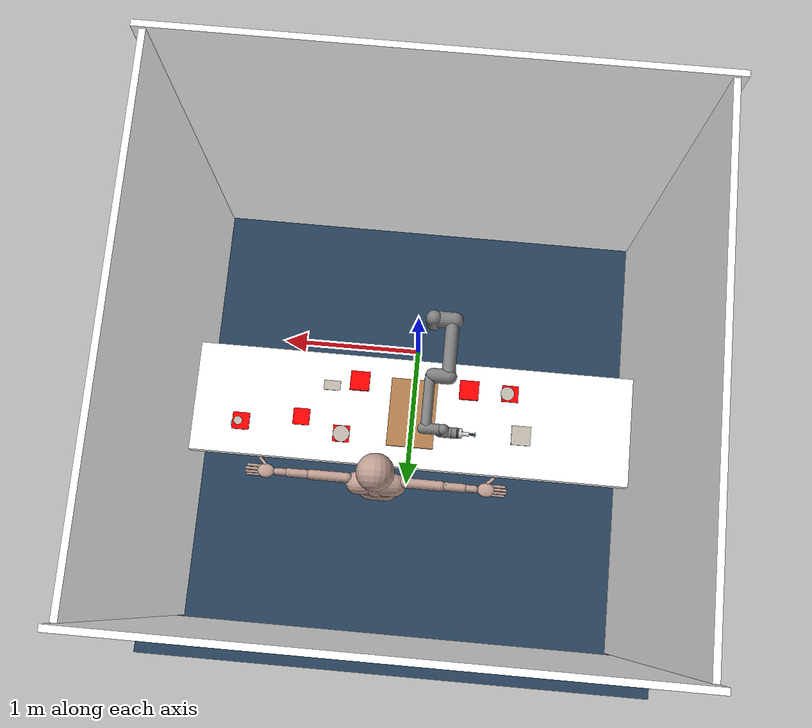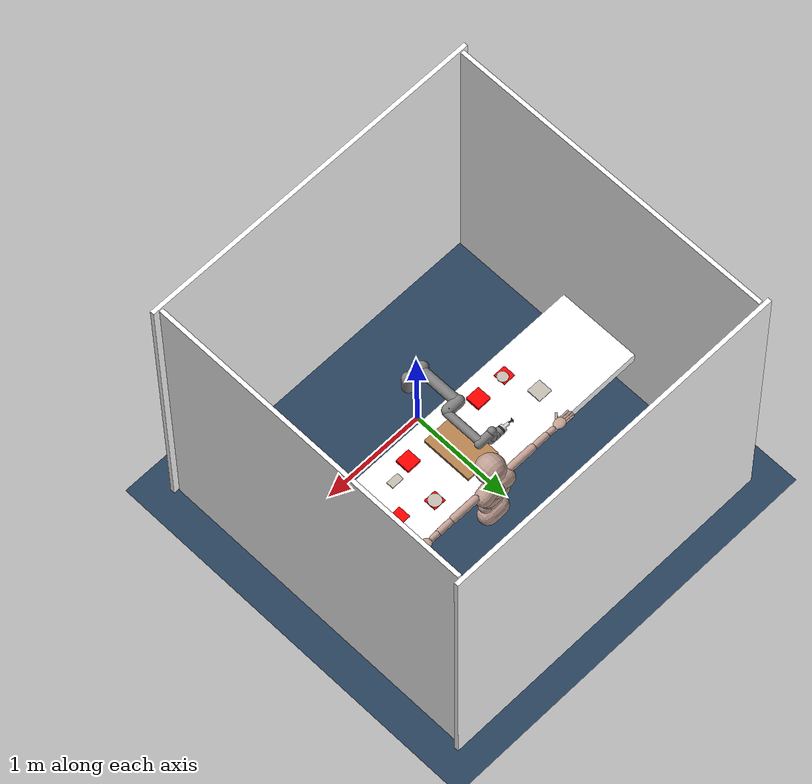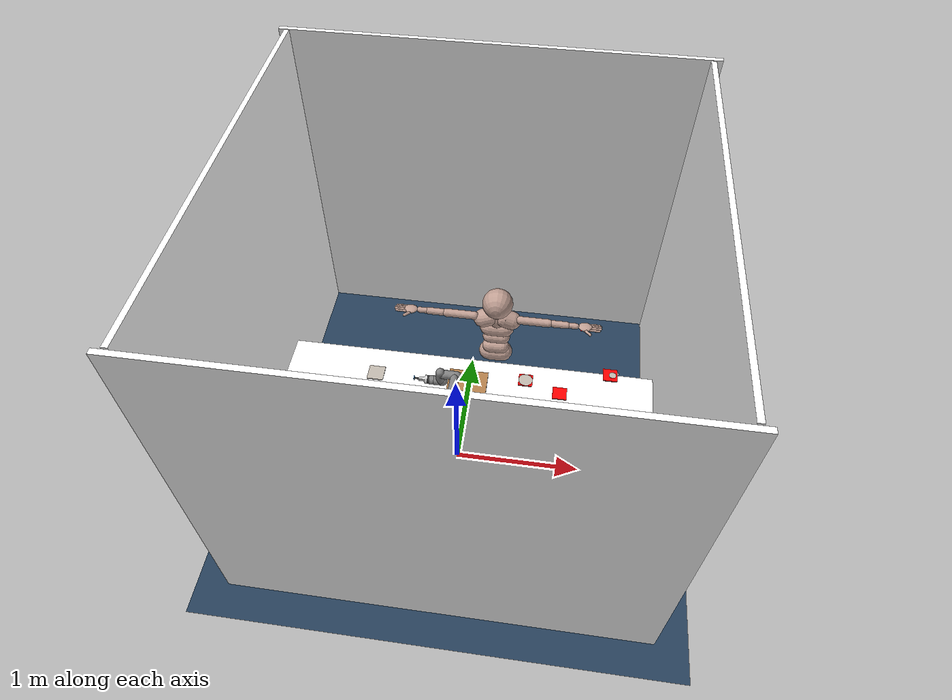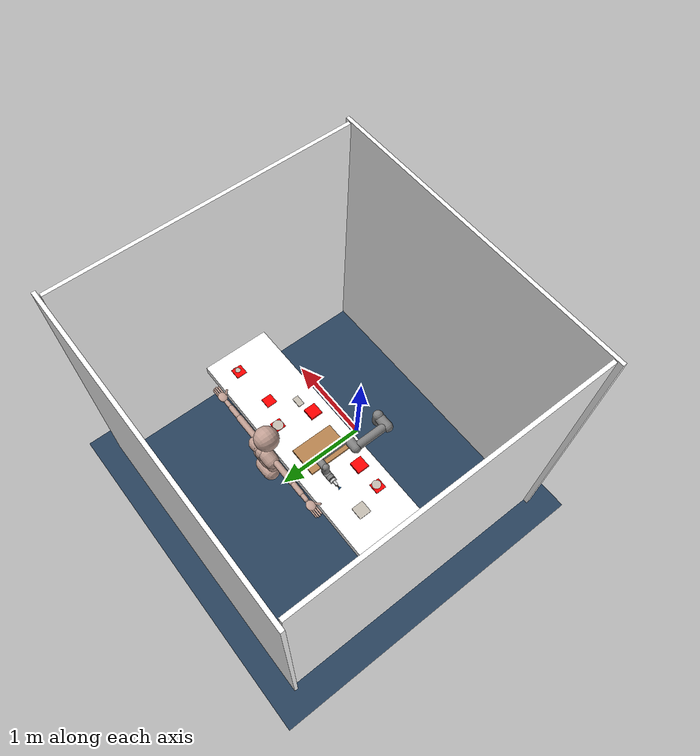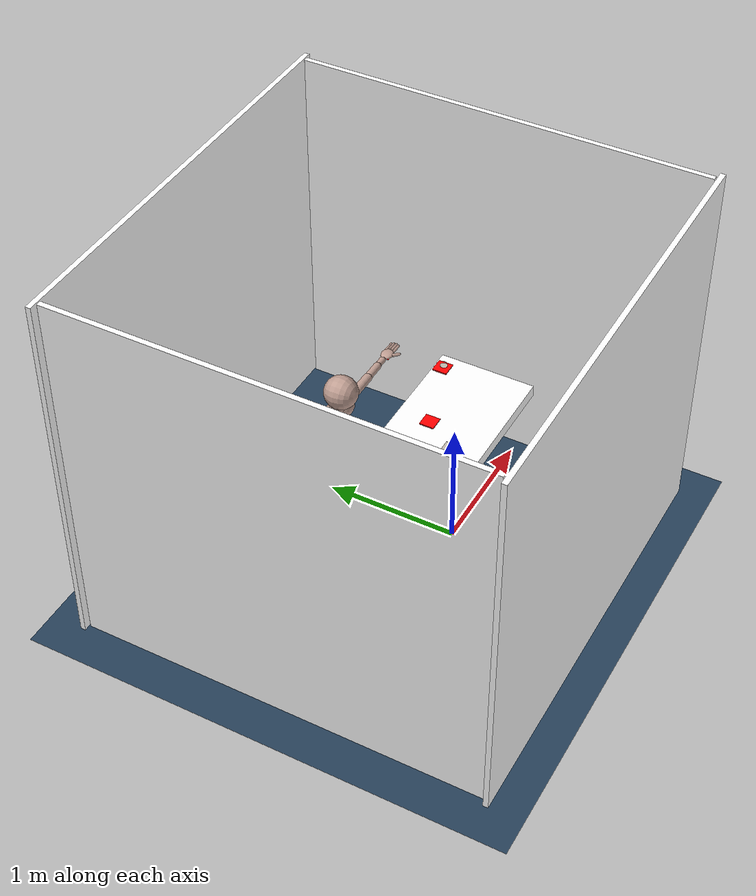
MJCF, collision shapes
<mujoco model="ur5e table">
  <compiler angle="radian" autolimits="true"/>
  <include file="assets/ur5e/ur5e_assets.xml"/>
  <include file="assets/ur5e/ur5e_1_assets.xml"/>
  <include file="assets/ur5e/suction_assets.xml"/>
  <include file="assets/humanoid_assets.xml"/>
  <include file="assets/scene_assets.xml"/>
  <include file="assets/object_assets.xml"/>

  <visual>
    <headlight diffuse="0.6 0.6 0.6"  ambient="0.1 0.1 0.1" specular="0 0 0"/>
    <rgba haze="0.15 0.25 0.35 1"/>
    <global azimuth="120" elevation="-20"/>
  </visual>

  <worldbody>
    <light pos="0 0 1.5" dir="0 0 -1" directional="true"/>
    <geom name="floor" pos="0 0 -0.5" size="0 0 0.05" type="plane" material="groundplane"/>
    <!-- adding a table box -->
    <body name="table" pos="0 0.5 0">
      <geom name="table_collision" pos="0 0 0.1" size="1.6 0.4 0.05" type="box" group="0" friction="1 0.5 0.0001" rgba="1 1 1 1"/>
      <body name="table_top" pos="0 0 0.1">
        <geom name="table_top" size="1.6 0.4 0.05" type="box" conaffinity="0" contype="0" group="1" rgba="1 1 1 1"/>

      </body>

      <geom name="table_left" pos="-1.63 0 1" size="0.02 1.6 1.5" rgba="1 1 1 0" type="box"/>
      <geom name="table_right" pos="1.63 0 1" size="0.02 1.6 1.5" rgba="1 1 1 0" type="box"/>
      <geom name="table_front" pos="0 1.63 1" size="1.7 0.02 1.5" rgba="1 1 1 0" type="box"/>
      <geom name="table_back" pos="0 -1.63 1" size="1.7 0.02 1.5" rgba="1 1 1 0" type="box"/>

    </body>

    <body name="humanoid" pos="0.2 1.06 0.17" >
      <include file="assets/humanoid_include.xml" />
    </body>

    <body name="ur5e_suction" pos="-0.1 -0.2 0.1"  >
      <include file="assets/ur5e/ur5e_suction.xml" />
    </body>

    <geom name="panel1" pos="-0.8 0.6 0.2" size="0.05 0.05 0.01" type="box" conaffinity="0" contype="0"  group="1" mass="0.00001" friction="1 0.005 0.0001" rgba="1 1 0 0" />
    <geom name="panel2" pos="-0.8 0.4 0.2" size="0.05 0.05 0.01" type="box" conaffinity="0" contype="0"  group="1" mass="0.00001" friction="1 0.005 0.0001" rgba="1 1 0 0" />

    <geom name="panel3" pos="-0.6 0.6 0.2" size="0.05 0.05 0.01" type="box" conaffinity="0" contype="0"  group="1" mass="0.00001" friction="1 0.005 0.0001" rgba="1 1 0 0" />
    <geom name="panel4" pos="-0.6 0.4 0.2" size="0.05 0.05 0.01" type="box" conaffinity="0" contype="0"  group="1" mass="0.00001" friction="1 0.005 0.0001" rgba="1 1 0 0" />

    <geom name="panel5" pos="-0.4 0.6 0.2" size="0.05 0.05 0.01" type="box" conaffinity="0" contype="0"  group="1" mass="0.00001" friction="1 0.005 0.0001" rgba="1 1 0 0" />
    <geom name="panel6" pos="-0.4 0.4 0.2" size="0.05 0.05 0.01" type="box" conaffinity="0" contype="0"  group="1" mass="0.00001" friction="1 0.005 0.0001" rgba="1 1 0 0" />

    <geom name="panel7" pos="0.4 0.6 0.2" size="0.05 0.05 0.01" type="box" conaffinity="0" contype="0"  group="1" mass="0.00001" friction="1 0.005 0.0001" rgba="1 1 0 0" />
    <geom name="panel8" pos="0.4 0.4 0.2" size="0.05 0.05 0.01" type="box" conaffinity="0" contype="0"  group="1" mass="0.00001" friction="1 0.005 0.0001" rgba="1 1 0 0" />

    <geom name="panel9" pos="0.6 0.6 0.2" size="0.05 0.05 0.01" type="box" conaffinity="0" contype="0"  group="1" mass="0.00001" friction="1 0.005 0.0001" rgba="1 1 0 0" />
    <geom name="panel10" pos="0.6 0.4 0.2" size="0.05 0.05 0.01" type="box" conaffinity="0" contype="0"  group="1" mass="0.00001" friction="1 0.005 0.0001" rgba="1 1 0 0" />

    <geom name="panel11" pos="0.8 0.6 0.2" size="0.05 0.05 0.01" type="box" conaffinity="0" contype="0"  group="1" mass="0.00001" friction="1 0.005 0.0001" rgba="1 1 0 0" />
    <geom name="panel12" pos="0.8 0.4 0.2" size="0.05 0.05 0.01" type="box" conaffinity="0" contype="0"  group="1" mass="0.00001" friction="1 0.005 0.0001" rgba="1 1 0 0" />

    <geom name="panel13" pos="1.0 0.6 0.2" size="0.05 0.05 0.01" type="box" conaffinity="0" contype="0"  group="1" mass="0.00001" friction="1 0.005 0.0001" rgba="1 1 0 0" />
    <geom name="panel14" pos="1.0 0.4 0.2" size="0.05 0.05 0.01" type="box" conaffinity="0" contype="0"  group="1" mass="0.00001" friction="1 0.005 0.0001" rgba="1 1 0 0" />

    <body name="cutting_board" pos="0 0.5 0.16" >
      <geom name="cutting_board" pos="0 0 0" size="0.17 0.25 0.02" type="box" group="0" friction="1 0.005 0.0001" material="wood" />
      <site name="cutting_board" pos="0 0.05 0.06" rgba='1 0 0 1' type='cylinder' size='0.003 0.006' />
    </body>

    <body name="bread_slice1" pos="-0.4 0.3 0.2" >
      <freejoint name="bread_slice1_joint"/>
      <geom mesh="bread_slice_mesh" type="mesh" material="bread-slice" class="object_visual" />
      <geom type="box" group="0" rgba="1 0 0 0" size="0.07 0.07 0.015" density="500" friction="1 1 0.1"/>
      <site pos="0 0 0.05" name="bread_slice1" class="site_top" />
    </body>

    <body name="bread_slice2" pos="0.4 0.3 0.2" >
      <freejoint name="bread_slice2_joint"/>
      <geom mesh="bread_slice_mesh" type="mesh" material="bread-slice" class="object_visual" />
      <geom type="box" group="0" rgba="1 0 0 0" size="0.07 0.07 0.015" density="500" friction="1 1 0.1"/>

      <site pos="0 0 0.05" name="bread_slice2" class="site_top" />
    </body>

    <body name="bacon" pos="0.6 0.35 0.2"  >
      <freejoint name="bacon_joint"/>
      <geom type="box" group="0" size="0.06 0.035 0.005" density="1000" material="bacon" friction="1 1 0.1"/>
      <site pos="0 0 0.05" name="bacon" class="site_top"/>
    </body>

    <body name="beef_patty" pos="0.5 0.7 0.2"  >
      <freejoint name="beef_patty_joint"/>
      <geom type="cylinder" class='object_visual' friction="1 0.1 0.05" solref="0.01 1.5" condim="6" group="0" size="0.06 0.006" density="100" material="patty"/>
      <geom type="box" group="0" size="0.06 0.06 0.005" density="1000" rgba="1 0 0 0" friction="1 1 0.1"/>
      <site pos="0 0 0.05" name="beef_patty" class="site_top"/>
    </body>

  <!-- cheese -->
    <body name="cheese" pos="-0.8 0.6 0.2">
      <freejoint name="cheese_joint"/>
      <geom type="box" group="0" size="0.07 0.07 0.005" density="1000" material="cheese" friction="1 1 0.1"/>
      <site pos="0 0 0.05" name="cheese" class="site_top" />
    </body>

    <body name="tomato" pos="0.8 0.6 0.2">
      <freejoint name="tomato_joint"/>
      <geom type="cylinder" class='object_visual' friction="1 0.1 0.05" solref="0.01 1.5" condim="6" group="0" size="0.06 0.004" density="100" material="tomato"/>
      <geom type="box" group="0" size="0.06 0.06 0.005" density="1000" rgba="1 0 0 0" friction="1 1 0.1"/>
      <site pos="0 0 0.07" name="tomato" class="site_top"/>
    </body>

    <body name="cucumber" pos="1.2 0.7 0.4">
      <freejoint name="cucumber_joint"/>
      <geom pos="0 0 0" size="0.03 0.002" type="cylinder" class='object_visual' friction="1 0.1 0.05" solref="0.01 1.5" condim="6" group="0" density="100" material="cucumber"/>
      <geom pos="0.02 0 0.005" size="0.03 0.002"  type="cylinder" class='object_visual' friction="1 0.1 0.05" solref="0.01 1.5" condim="6" group="0" density="100" material="cucumber"/>
      <geom pos="0.04 0.02 0" size="0.03 0.002"  type="cylinder" class='object_visual' friction="1 0.1 0.05" solref="0.01 1.5" condim="6" group="0" density="100" material="cucumber"/>

      <geom type="box" group="0" size="0.06 0.06 0.005" density="1000" rgba="1 0 0 0" friction="1 1 0.1"/>
      <site pos="0 0 0.07" name="cucumber" class="site_top"/>
    </body>

    <body name="ham" pos="-0.7 0.3 0.2">
      <freejoint name="ham_joint"/>
      <geom pos="0 0 0" size="0.05 0.002" type="cylinder" class='object_visual' friction="1 0.1 0.05" solref="0.01 1.5" condim="6" group="0" density="100" material="ham"/>
      <geom pos="0.02 0 0.005" size="0.05 0.002"  type="cylinder" class='object_visual' friction="1 0.1 0.05" solref="0.01 1.5" condim="6" group="0" density="100" material="ham"/>
      <geom type="box" group="0" size="0.06 0.06 0.005" density="1000" rgba="1 0 0 0" friction="1 1 0.1"/>
      <site pos="0 0 0.07" name="ham" class="site_top"/>
    </body>

    <camera mode="fixed" name="face_panda" pos="0.062 -2.806 0.768" xyaxes="1.000 0.009 -0.000 0.001 -0.131 0.991"/>
    <camera mode="fixed" name="face_ur5e" pos="0.084 3.711 0.772" xyaxes="-1.000 0.016 0.000 0.002 0.111 0.994"/>
    <camera mode="fixed" name="top_cam" pos="-0.001 0.652 2.057" xyaxes="-1.000 -0.000 -0.000 0.000 -1.000 0.019"/>
    <camera mode="fixed" name="right_cam" pos="1.873 0.605 0.926" xyaxes="0.014 1.000 0.000 -0.242 0.003 0.970"/>
    <camera mode="fixed" name="left_cam" pos="-1.873 0.605 0.926" xyaxes="-0.000 -1.000 0.000 0.177 -0.000 0.984"/>
    <camera name="teaser" pos="2.675 -0.747 1.997" xyaxes="0.496 0.869 -0.000 -0.429 0.245 0.869"/>
    <camera name='recipe' pos="1.257 -0.407 1.244" xyaxes="0.579 0.815 0.000 -0.401 0.285 0.871"/>
    <camera name='video' pos="1.957 -0.281 1.731" xyaxes="0.487 0.874 0.000 -0.500 0.278 0.820"/>

  </worldbody>

  <equality>
    <weld name="bacon_suction" body1='bacon' body2='suction_tip_1' relpose='0 0 0 1 0 0 0' active='false'/>
    <weld name="cheese_suction" body1='cheese' body2='suction_tip_1' relpose='0 0 0 1 0 0 0' active='false'/>
    <weld name="tomato_suction" body1='tomato' body2='suction_tip_1' relpose='0 0 0 1 0 0 0' active='false'/>
    <weld name="bread_slice1_suction" body1='bread_slice1' body2='suction_tip_1' relpose='0 0 0 1 0 0 0' active='false'/>
    <weld name="bread_slice2_suction" body1='bread_slice2' body2='suction_tip_1' relpose='0 0 0 1 0 0 0' active='false'/>
    <weld name="cucumber_suction" body1='cucumber' body2='suction_tip_1' relpose='0 0 0 1 0 0 0' active='false'/>
    <weld name="ham_suction" body1='ham' body2='suction_tip_1' relpose='0 0 0 1 0 0 0' active='false'/>
    <weld name="beef_patty_suction" body1='beef_patty' body2='suction_tip_1' relpose='0 0 0 1 0 0 0' active='false'/>

    <weld name='bacon_rpalm' body1='bacon' body2='rpalm' relpose='0.0 0.0 0 0.0 1.0 0.0 0.0' active='false'/>
    <weld name='cheese_rpalm' body1='cheese' body2='rpalm' relpose='0.0 0.0 0 0.0 1.0 0.0 0.0' active='false'/>
    <weld name='tomato_rpalm' body1='tomato' body2='rpalm' relpose='0.0 0.0 0 0.0 1.0 0.0 0.0' active='false'/>
    <weld name='bread_slice1_rpalm' body1='bread_slice1' body2='rpalm' relpose='0.0 0.0 0 0.0 1.0 0.0 0.0' active='false'/>
    <weld name='bread_slice2_rpalm' body1='bread_slice2' body2='rpalm' relpose='0.0 0.0 0 0.0 1.0 0.0 0.0' active='false'/>
    <weld name='cucumber_rpalm' body1='cucumber' body2='rpalm' relpose='0.0 0.0 0 0.0 1.0 0.0 0.0' active='false'/>
    <weld name='ham_rpalm' body1='ham' body2='rpalm' relpose='0.0 0.0 0 0.0 1.0 0.0 0.0' active='false'/>
    <weld name='beef_patty_rpalm' body1='beef_patty' body2='rpalm' relpose='0.0 0.0 0 0.0 1.0 0.0 0.0' active='false'/>

  </equality>

  <keyframe>
    <key
    name="home"
    ctrl="0 -1.5708 -1.5708 1.5708 -1.5708 -1.5708 0 0     0 0 0 0 0 -0.25 0 -0.3 0.7 0 0 0 0 0 0 0"
    qpos='-3.09045e-07 0.00482237 1.64097e-05 -0.00617895 -0.0161173 1.03212 0.383236 -0.548004 -0.116539 -0.00940649 -0.0201149 0.158207 0.0206823 0.0984588 0.0102944 0.00595989 4.80231e-05 -0.252486 0.00187773 -0.304223 0.698156 2.01836e-05 0.000264468 -3.46015e-05 5.389e-05 -1.50264e-06 1.74216e-05 -7.3564e-18 -1.5708 -1.56576 1.57579 -1.57023 -1.5708 2.70197e-13 -0.4 0.3 0.16494 1 9.70873e-17 -1.39463e-16 9.92144e-17 0.4 0.3 0.16494 1 9.70873e-17 -1.39463e-16 9.92144e-17 0.6 0.35 0.15494 1 3.65702e-17 1.52225e-18 -6.05067e-11 0.5 0.7 0.15494 1 3.30488e-17 -2.1818e-18 -1.08463e-16 -0.8 0.6 0.15494 1 2.48471e-17 3.00262e-20 -1.26614e-16 0.8 0.6 0.15494 1 3.58171e-17 -1.464e-18 7.88657e-17 0.942824 0.332426 0.15494 0.999762 -1.23062e-08 3.43962e-08 0.0218363 -1 0.3 0.15494 1 2.69756e-17 1.1553e-08 3.52576e-13' />

    </keyframe>

</mujoco>

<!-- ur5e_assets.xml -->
<mujocoinclude>
  <compiler angle="radian" meshdir="assets" texturedir="assets" autolimits="true"/>
  <default>
    <joint axis="0 1 0" range="-6.28319 6.28319"/>
    <position ctrlrange="-6.2831 6.2831"/>

    <default class="visual">
      <geom type="mesh" contype="0" conaffinity="0" group="2"/>
    </default>

    <default class="collision">
      <geom type="capsule" group="3"/>
      <default class="eef_collision">
        <geom type="cylinder"/>
      </default>
    </default>
    <site size="0.001" rgba="0.5 0.5 0.5 0.3" group="4"/>

    <!-- Reference:
      https://www.universal-robots.com/articles/ur/robot-care-maintenance/max-joint-torques/ -->
    <default class="size3">
      <joint armature="0.1" damping="200"/>
      <position kp="3500" forcerange="-150 150"/>
      <default class="size3_limited">
      <!-- NOTE(Mandi): temp change 3.1415 into 2.1415 -->
        <joint range="-3.1415 2.1415"/>
        <position ctrlrange="-3.1415 2.1415"/>
      </default>
    </default>
    <default class="size1">
      <joint armature="0.1" damping="15"/>
      <position kp="3000" forcerange="-28 28"/>
    </default>

    <default class="active_adhesion">
      <geom margin=".01" gap=".01"/>
    </default>
  </default>

  <asset>
    <material name="black" specular="0.5" shininess="0.25" rgba="0.033 0.033 0.033 1"/>
    <material name="jointgray" specular="0.5" shininess="0.25" rgba="0.278 0.278 0.278 1"/>
    <material name="linkgray" specular="0.5" shininess="0.25" rgba="0.82 0.82 0.82 1"/>
    <material name="urblue" specular="0.5" shininess="0.25" rgba="0.49 0.678 0.8 1"/>

    <mesh file="ur5e/assets/base_0.obj"/>
    <mesh file="ur5e/assets/base_1.obj"/>
    <mesh file="ur5e/assets/shoulder_0.obj"/>
    <mesh file="ur5e/assets/shoulder_1.obj"/>
    <mesh file="ur5e/assets/shoulder_2.obj"/>
    <mesh file="ur5e/assets/upperarm_0.obj"/>
    <mesh file="ur5e/assets/upperarm_1.obj"/>
    <mesh file="ur5e/assets/upperarm_2.obj"/>
    <mesh file="ur5e/assets/upperarm_3.obj"/>
    <mesh file="ur5e/assets/forearm_0.obj"/>
    <mesh file="ur5e/assets/forearm_1.obj"/>
    <mesh file="ur5e/assets/forearm_2.obj"/>
    <mesh file="ur5e/assets/forearm_3.obj"/>
    <mesh file="ur5e/assets/wrist1_0.obj"/>
    <mesh file="ur5e/assets/wrist1_1.obj"/>
    <mesh file="ur5e/assets/wrist1_2.obj"/>
    <mesh file="ur5e/assets/wrist2_0.obj"/>
    <mesh file="ur5e/assets/wrist2_1.obj"/>
    <mesh file="ur5e/assets/wrist2_2.obj"/>
    <mesh file="ur5e/assets/wrist3.obj"/>

     <!-- suction gripper -->
    <mesh file="suction/base.obj" name="suction_base_mesh" scale="0.001 0.001 0.001" />
    <mesh file="suction/mid_suction.obj" name="suction_mid_mesh" scale="0.001 0.001 0.001" />
    <mesh file="suction/head.obj" name="suction_head_mesh" scale="0.0015 0.0015 0.0015" />
    <mesh file="suction/tip.obj" name="suction_tip_mesh" scale="0.0015 0.0015 0.0015" />
    <material name="DarkGrey" rgba="0.2 0.2 0.2 1.0"  />
    <material name="suction_blue" rgba="0.18039216 0.50588235 0.77254902 1"/>

  </asset>

</mujocoinclude>

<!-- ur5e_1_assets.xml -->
<mujocoinclude>
  <compiler angle="radian" meshdir="assets" texturedir="assets" autolimits="true"/>
 <actuator>
    <position name="ur5e_1_base" joint="ur5e_1_base_joint" kp="1000" ctrlrange="-2 1.3"/>
    <position name="ur5e_1_shoulder_pan" joint="ur5e_1_shoulder_pan_joint" class="size3" />
    <position name="ur5e_1_shoulder_lift" joint="ur5e_1_shoulder_lift_joint" class="size3"/>
    <position name="ur5e_1_elbow" joint="ur5e_1_elbow_joint" class="size3_limited"/>
    <position name="ur5e_1_wrist_1" joint="ur5e_1_wrist_1_joint" class="size1"/>
    <position name="ur5e_1_wrist_2" joint="ur5e_1_wrist_2_joint" class="size1"/>
    <position name="ur5e_1_wrist_3" joint="ur5e_1_wrist_3_joint" class="size1" />

  </actuator>

</mujocoinclude>

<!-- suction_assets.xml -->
<mujocoinclude>
  <actuator>
    <adhesion name="adhere_gripper" body="suction_disk" ctrlrange="0 1" gain="100"/>
  </actuator>
</mujocoinclude>

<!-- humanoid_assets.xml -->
<mujocoinclude>
  <compiler angle="radian"  />
  <statistic extent="2" center="0 0 1"/>
  <default class="main">
    <joint limited="true" solimplimit="0 0.99 0.01" stiffness="0.1" armature=".01" damping="1"/>
    <geom friction="0.7" solref="0.015 1" solimp="0.95 0.99 0.003"/>
    <motor ctrllimited="true" ctrlrange="-1 1"/>

    <default class="humanoid">
      <geom type="capsule" material="self"/>
      <default class="stiff_low">
        <joint stiffness="1" damping="80" armature="0.1" />
      </default>
      <default class="stiff_medium">
        <joint stiffness="1" damping="80" armature="0.1" />
      </default>
      <default class="stiff_high">
        <joint stiffness="1" damping="80" armature="0.1" />
      </default>

      <default class="joint_act">
        <position kp="1000"  forcerange="-90 90"/>
      </default>

      <default class="touch">
        <site group="3" rgba="0 0 1 .5"/>
      </default>

      <default class="keypoint">
        <site size="0.01" type="sphere" rgba="1 0 0 0"/>
        <geom rgba='0 0.5 1 1' type='cylinder' size='0.005 0.01' conaffinity="0" contype="0"  group="1" mass="0.00001"/>
      </default>
    </default>

    <default class="hand_adhesion">
      <geom margin=".015" gap=".015"/>
    </default>
  </default>

  <asset>
    <texture name="grid" type="2d" builtin="checker" rgb1=".1 .2 .3" rgb2=".2 .3 .4" width="300" height="300" mark="edge" markrgb=".2 .3 .4"/>
    <material name="grid" texture="grid" texrepeat="1 1" texuniform="true" reflectance=".2"/>
    <material name="self" rgba="0.7490196078431373 0.6196078431372549 0.5725490196078431 1" reflectance=".1"/>
    <material name="self_default" rgba=".7 .5 .3 1"/>
    <material name="self_highlight" rgba="0 .5 .3 1"/>
    <material name="effector" rgba=".7 .4 .2 1"/>
    <material name="effector_default" rgba=".7 .4 .2 1"/>
    <material name="effector_highlight" rgba="0 .5 .3 1"/>
    <material name="decoration" rgba=".3 .5 .7 1"/>
    <material name="eye" rgba="0 .2 1 1"/>
    <material name="target" rgba=".6 .3 .3 1"/>
    <material name="target_default" rgba=".6 .3 .3 1"/>
    <material name="target_highlight" rgba=".6 .3 .3 .4"/>
    <material name="site" rgba=".5 .5 .5 .3"/>
  </asset>

  <contact>
    <exclude body1="lclavicle" body2="rclavicle"/>
    <exclude body1="lowerneck" body2="lclavicle"/>
    <exclude body1="lowerneck" body2="rclavicle"/>
    <exclude body1="upperneck" body2="lclavicle"/>
    <exclude body1="upperneck" body2="rclavicle"/>
  </contact>

  <actuator>
    <position name="human_base" joint="human_base_joint" ctrlrange="-1.5 0.1" kp="1000" />
    <position name="thoraxrx" joint="thoraxrx" ctrlrange="-0.2 0.3" class="joint_act" />
    <position name="thoraxry" joint="thoraxry" ctrlrange="-0.5236 0.5236" class="joint_act" />

  <!-- motor version of the left side controllable joints: -->

  <!-- position version of the left side joints: -->

    <!-- joints from body:  "lhipjoint"-->

    <!-- joints from body:  "rhipjoint"-->

    <!-- position version of the right side joints: -->
    <position name="rclaviclery" joint="rclaviclery" ctrlrange="-0.174533 0.349" class="joint_act"/>
    <position name="rclaviclerz" joint="rclaviclerz" ctrlrange="-0.349 0" class="joint_act"/>
    <position name="rhumerusrx" joint="rhumerusrx" ctrlrange="-1.0472 1.5708" class="joint_act"  />
    <position name="rhumerusry" joint="rhumerusry" ctrlrange="-1.5708 1.5708" class="joint_act" />
    <position name="rhumerusrz" joint="rhumerusrz" ctrlrange="-1.5708 1.5708" class="joint_act" />
    <position name="rradiusrx" joint="rradiusrx" ctrlrange="-0.174533 2.967" class="joint_act" />
    <position name="rwristry" joint="rwristry" ctrlrange="-3.1415 0" class="joint_act" />
    <position name="rhandrx" joint="rhandrx" ctrlrange="-1.5708 1.5708" class="joint_act" />
    <position name="rhandrz" joint="rhandrz" ctrlrange="-0.7853 0.7853" class="joint_act" />
    <position name="rfingersrx" joint="rfingersrx" ctrlrange="0 1.6" class="joint_act"/>
    <position name="rthumbrx" joint="rthumbrx" ctrlrange="0 1.5708" class="joint_act"/>
    <position name="rthumbrz" joint="rthumbrz" ctrlrange="-0.7853 0.7853" class="joint_act"/>

    <adhesion name="adhere_hand" body="rhand" ctrlrange="0 1" gain="600"/>

    <!-- NOTE(Mandi): keeps just one joint, thoraxry, to keep thorax body stable -->

  </actuator>

  <sensor>
    <subtreelinvel name="thorax_subtreelinvel" body="thorax"/>
    <velocimeter name="sensor_root_veloc" site="root"/>
    <gyro name="sensor_root_gyro" site="root"/>
    <accelerometer name="sensor_root_accel" site="root"/>

  </sensor>

</mujocoinclude>

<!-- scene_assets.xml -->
<mujocoinclude>
  <asset>
    <texture type="skybox" builtin="gradient" rgb1="0.3 0.5 0.7" rgb2="0 0 0" width="512" height="3072"/>
    <texture type="2d" name="groundplane" builtin="checker" mark="edge" rgb1="0.2 0.3 0.4" rgb2="0.1 0.2 0.3" markrgb="0.8 0.8 0.8" width="300" height="300"/>
    <material name="groundplane" texture="groundplane" texuniform="true" texrepeat="2 2" reflectance="0.2"/>
  </asset>
</mujocoinclude>

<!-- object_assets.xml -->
<mujocoinclude>
  <default>
    <default class="object_visual">
      <geom type="mesh" conaffinity="0" contype="0"  group="1" mass="0.00001" />
    </default>

    <default class="obj_sites">
      <site type='cylinder' size='0.003 0.006' group="3"/>
      <default class="site_top">
        <geom rgba='1 0 0 0' type='cylinder' size='0.003 0.003' conaffinity="0" contype="0"  group="1" mass="0.00001"/>
        <site rgba='1 0 0 1' zaxis="0 0 1"/>
      </default>
      <default class="site_bottom">
        <geom rgba='0 1 0 0.3' type='cylinder' size='0.003 0.003' conaffinity="0" contype="0"  group="1" mass="0.00001"/>
        <site rgba='0 1 0 0.3' zaxis="0 0 -1" />
      </default>
      <default class="site_front">
        <geom rgba='1 1 0 0.3' type='cylinder' size='0.003 0.003' conaffinity="0" contype="0"  group="1" mass="0.00001"/>
        <site rgba='1 1 0 0.3' zaxis="0 1 0" />
      </default>
      <default class="site_back">
        <geom rgba='0 1 1 0.3' type='cylinder' size='0.003 0.003' conaffinity="0" contype="0"  group="1" mass="0.00001"/>
        <site rgba='0 1 1 0.3' zaxis="0 -1 0"/>
      </default>
      <default class="site_left">
        <geom rgba='1 0 1 0.3' type='cylinder' size='0.003 0.006' zaxis="-1 0 0" conaffinity="0" contype="0"  group="1" mass="0.00001"/>
        <site rgba='1 0 1 0.3' zaxis="-1 0 0"/>
      </default>
      <default class="site_right">
        <geom rgba='0 0 1 0.3' type='cylinder' size='0.003 0.003' conaffinity="0" contype="0"  group="1" mass="0.00001"/>
        <site rgba='0 0 1 0.3' zaxis="1 0 0" />
      </default>

    </default>

    <default class="object_collision">
        <geom density="500" rgba="0.8 0.8 0.8 0.9" group="3"/>
        <!-- friction="1 0.5 0.01" margin="0.0005"  -->
    </default>
    <default class="hingecabinet">
      <joint damping="2" frictionloss="2" armature=".01" limited="true"/>
      <default class="hinge_collision">
          <geom type="box" material="white-wood" />
      </default>
    </default>

  </default>

  <asset>
    <!-- CREDIT: taken from robosuite -->
    <!-- milk -->
    <mesh file="objects/meshes/milk.msh" name="milk_mesh" scale="1.5 1.5 1.5"/>
    <mesh file="objects/meshes/milk_contact0.stl" name="milk_contact0" scale="1.5 1.5 1.5"/>
    <texture file="objects/textures/ceramic.png" name="tex-ceramic" type="2d"/>
    <material name="ceramic" reflectance="0.5" texrepeat="1 1" texture="tex-ceramic" texuniform="true"/>

    <!-- pantry box -->
    <texture file="objects/textures/light-wood.png" type="2d" name="tex-light-wood"/>
    <material name="light-wood" reflectance="0" texrepeat="15 15" texture="tex-light-wood" texuniform="true"/>
    <material name="wood" reflectance="0" texrepeat="4 4" texture="tex-light-wood" texuniform="true" />

    <!-- bread -->
    <texture file="objects/textures/bread.png" type="2d" name="tex-bread" />
    <texture file="objects/textures/bread_slice.png" type="2d" name="tex-bread-slice" gridsize="1 1" />
    <material name="bread" reflectance="0.7" texrepeat="10 10" texture="tex-bread" texuniform="true"/>
    <material name="bread-slice" reflectance="0.01" texrepeat="10 10" texture="tex-bread" texuniform="false"/>
    <mesh file="objects/meshes/bread.stl" name="bread_mesh" scale="1.4 2.4 1.4"/>
    <mesh file="objects/meshes/bread_slice.stl" name="bread_slice_mesh" scale="1 1 1"/>

    <!-- soda can -->
    <mesh file="objects/meshes/can.msh" name="can_mesh" scale="1.4 1.4 1.4"/>
    <texture file="objects/textures/soda.png" name="tex-can" type="2d"/>
    <material name="can" reflectance="0.7" texrepeat="5 5" texture="tex-can" texuniform="true"/>

    <!-- cereal box -->
    <mesh file="objects/meshes/cereal.msh" name="cereal" scale="1.2 1.4 1.2"/>
    <texture type="2d" file="objects/textures/cereal.png" rgb1="1 1 1" name="tex-cereal"/>
    <material name="cereal" reflectance="0.5" texrepeat="1 1" texture="tex-cereal" texuniform="false"/>

    <!-- trash bin -->
    <mesh file="objects/meshes/bin.stl" name="trash_bin" scale="0.6 0.85 0.3"/>

    <!-- cheese -->
    <texture name="tex-cheese" type="2d" file="objects/textures/cheese.png"/>
    <material name="cheese" reflectance="0.001" texrepeat="0.9 0.9" texture="tex-cheese" texuniform="false"/>

    <!-- bacon -->
    <texture name="tex-bacon" type="2d" file="objects/textures/bacon.png"/>
    <material name="bacon" reflectance="0" texrepeat="0.4 0.4" texture="tex-bacon" texuniform="false"/>

    <!-- tomato -->
    <texture name="tex-tomato" type="2d" file="objects/textures/tomato.png"/>
    <material name="tomato"  texrepeat="0.6 0.6" texture="tex-tomato" texuniform="false"/>

    <texture name="tex-cucumber" type="2d" file="objects/textures/cucumber.png"/>
    <material name="cucumber" shininess="0" reflectance="0" specular="0.001"  texrepeat="0.9 0.9" texture="tex-cucumber" texuniform="false"/>

    <texture name="tex-ham" type="2d" file="objects/textures/ham.png"/>
    <material name="ham" specular="0" shininess="0" texrepeat="0.8 0.8" texture="tex-ham" texuniform="false"/>

    <!-- patty -->
    <texture name="tex-patty" type="2d" file="objects/textures/patty.png"/>
    <material name="patty" specular="0.01" texrepeat="0.9 0.9" texture="tex-patty" texuniform="false"/>

    <!-- egg -->
    <texture name="tex-egg" type="2d" file="objects/textures/egg.png"/>
    <material name="egg" reflectance="0" texrepeat="1 1" texture="tex-egg" texuniform="false"/>

    <!-- CREDIT: below sections are taken from object_sim -->
    <!-- banana -->
    <mesh name="banana" file="object_sim/banana/banana.stl" scale="1 1 1" />
    <mesh name="banana_contact0" file="object_sim/banana/contact0.stl" scale="1 1 1"/>
    <mesh name="banana_contact1" file="object_sim/banana/contact1.stl"/>
    <mesh name="banana_contact2" file="object_sim/banana/contact2.stl"/>
    <mesh name="banana_contact3" file="object_sim/banana/contact3.stl"/>
    <mesh name="banana_contact4" file="object_sim/banana/contact4.stl"/>

    <!-- apple -->
    <mesh name="apple" file="object_sim/apple/apple.stl" />
    <mesh name="apple_contact0" file="object_sim/apple/contact0.stl"/>
    <mesh name="apple_contact1" file="object_sim/apple/contact1.stl"/>

    <!-- mug -->
    <mesh name="mug_mesh" file="object_sim/mug/mug.stl" scale="1.3 1.3 1.3" />
    <mesh name="mug_contact0" file="object_sim/mug/contact0.stl" scale="1.3 1.3 1.3" />
    <mesh name="mug_contact1" file="object_sim/mug/contact1.stl" scale="1.3 1.3 1.3" />
    <mesh name="mug_contact2" file="object_sim/mug/contact2.stl" scale="1.3 1.3 1.3" />
    <mesh name="mug_contact3" file="object_sim/mug/contact3.stl" scale="1.3 1.3 1.3" />
    <mesh name="mug_contact4" file="object_sim/mug/contact4.stl" scale="1.3 1.3 1.3" />
    <mesh name="mug_contact5" file="object_sim/mug/contact5.stl" scale="1.3 1.3 1.3" />
    <mesh name="mug_contact6" file="object_sim/mug/contact6.stl" scale="1.3 1.3 1.3" />
    <mesh name="mug_contact7" file="object_sim/mug/contact7.stl" scale="1.3 1.3 1.3" />
    <mesh name="mug_contact8" file="object_sim/mug/contact8.stl" scale="1.3 1.3 1.3" />
    <mesh name="mug_contact9" file="object_sim/mug/contact9.stl" scale="1.3 1.3 1.3" />
    <mesh name="mug_contact10" file="object_sim/mug/contact10.stl" scale="1.3 1.3 1.3" />
    <mesh name="mug_contact11" file="object_sim/mug/contact11.stl" scale="1.3 1.3 1.3" />
    <mesh name="mug_contact12" file="object_sim/mug/contact12.stl" scale="1.3 1.3 1.3" />
    <mesh name="mug_contact13" file="object_sim/mug/contact13.stl" scale="1.3 1.3 1.3" />

    <!-- cup -->
    <mesh name="cup_mesh" file="object_sim/cup/cup.stl" scale="1.3 1.3 1.3" />
    <mesh name="cup_contact0" file="object_sim/cup/contact0.stl" scale="1.3 1.3 1.3" />
    <mesh name="cup_contact1" file="object_sim/cup/contact1.stl" scale="1.3 1.3 1.3" />
    <mesh name="cup_contact2" file="object_sim/cup/contact2.stl" scale="1.3 1.3 1.3" />
    <mesh name="cup_contact3" file="object_sim/cup/contact3.stl" scale="1.3 1.3 1.3" />
    <mesh name="cup_contact4" file="object_sim/cup/contact4.stl" scale="1.3 1.3 1.3" />
    <mesh name="cup_contact5" file="object_sim/cup/contact5.stl" scale="1.3 1.3 1.3" />
    <mesh name="cup_contact6" file="object_sim/cup/contact6.stl" scale="1.3 1.3 1.3" />
    <mesh name="cup_contact7" file="object_sim/cup/contact7.stl" scale="1.3 1.3 1.3" />
    <mesh name="cup_contact8" file="object_sim/cup/contact8.stl" scale="1.3 1.3 1.3" />
    <mesh name="cup_contact9" file="object_sim/cup/contact9.stl" scale="1.3 1.3 1.3" />
    <mesh name="cup_contact10" file="object_sim/cup/contact10.stl" scale="1.3 1.3 1.3" />
    <mesh name="cup_contact11" file="object_sim/cup/contact11.stl" scale="1.3 1.3 1.3" />

    <!-- cabinet -->
    <texture file="objects/textures/white-wood.png" type="2d" name="tex-white-wood"/>
    <material name="white-wood" reflectance="0.6" texrepeat="15 15" texture="tex-white-wood" texuniform="true"/>

    <!-- polygon, trapozoid -->
    <mesh name="polygon_mesh" file="objects/meshes/polygon.stl" scale="1.6 1.6 1.3" />
    <mesh name="trapezoid_mesh" file="objects/meshes/trapezoid.stl" scale="1.7 1 1.3" />
    <material name="cube-purple" rgba="0.584 0.424 0.706 1" reflectance="0.5" shininess="0.5"/>
    <material name="cube-red" rgba="0.839 0.373 0.373 1" reflectance="0.5" shininess="0.5"/>
    <material name="cube-blue" rgba='0.003 0.451 0.698 1' reflectance="0.5" shininess="0.5"/>
    <material name="cube-green" rgba="0.008 0.62 0.451 1" reflectance="0.5" shininess="0.5"/>
    <material name="cube-orange" rgba="0.8 0.47 0 1" reflectance="0.5" shininess="0.5"/>
    <material name="cube-yellow" rgba="0.8 0.7 0 1" reflectance="0.5" shininess="0.5"/>
    <material name="cube-pink" rgba='0.984 0.686 0.894 1' reflectance="0.5" shininess="0.5"/>
    <material name="cube-gray" rgba='0.58 0.58 0.58 1' reflectance="0.5" shininess="0.5"/>

    <!-- broom -->
    <mesh file="objects/meshes/broom.stl" name="broom" scale="1 1 0.8"/>
    <texture type="2d" file="objects/textures/light-wood.png" rgb1="1 1 1" name="tex-broom"/>
    <material name="broom" reflectance="0.5" texrepeat="1 1" texture="tex-broom" texuniform="false"/>

    <!-- dustpan -->
    <mesh file="objects/meshes/dustpan.stl" name="dustpan" scale="1.2 1.2 1.2"/>

    <material name="stove-metal" rgba="0.8 0.8 0.8 1" />
    <material name="stove-black" rgba="0 0 0 1" />

  </asset>
</mujocoinclude>

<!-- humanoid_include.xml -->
<mujocoinclude>
<joint name="human_base_joint" type="slide" axis="1 0 0" range="-1.5 0.1" armature="0.1" damping="1000" />
<body name="root" childclass="humanoid" pos="0 0 0" euler="1.57  0 0">
      <site name="root" size=".01" rgba="0.5 0.5 0.5 0"/>
      <camera name="face" pos="0 0 0" xyaxes="1 0 0 0 0 1" fovy="80"/>
      <geom name="root_geom"  size="0.09 0.06" pos="0 -0.05 0" quat="1 0 -1 0"/>

      <body name="lowerback">
        <geom name="lowerback" size="0.065 0.055" pos="0 0.056 .03" quat="1 0 1 0" />
        <body name="upperback" pos="0 0.1 -0.01">
          <geom name="upperback" size="0.06 0.06" pos="0 0.06 0.02" quat="1 0 1 0" />
          <body name="thorax" pos="0.000512528 0.11356 0.000936821">
            <joint name="thoraxrx" axis="1 0 0" range="-0.2 0.3" class="stiff_high"/>
            <joint name="thoraxry" axis="0 1 0" range="-0.5236 0.5236" class="stiff_high"/>
            <geom name="thorax" size="0.08 0.07" pos="0 0.05 0" quat="1 0 1 0" />
            <body name="lowerneck" pos="0 0.113945 0.00468037">
              <geom name="lowerneck" size="0.08 0.02" pos="0 0.04 -.02" quat="1 1 0 0" />
              <body name="upperneck" pos="0 0.09 0.01">
                <geom name="upperneck" size="0.05 0.03" pos="0 0.05 0" quat=".8 1 0 0"/>
                <body name="head" pos="0 0.09 0">
                  <site name="head_keyp" class="keypoint"/>
                  <camera name="egocentric" pos="0 0 0" xyaxes="-1 0 0 0 1 0" fovy="80"/>
                  <geom name="head" type="sphere" size="0.13" pos="0 0.11 0.03" />
                  <site name="head_top_keyp" pos="0 0.21 0.03" class="keypoint"/>
                  <geom name="head_top_keyp" pos="0 0.11 0.03" class="keypoint"/>
                </body>
              </body>
            </body>
            <body name="lclavicle" pos="0 0.113945 0.00468037">
              <joint name="lclaviclerz" axis="0 0 1" range="0 0.349" class="stiff_high"/>
              <joint name="lclaviclery" axis="0 1 0" range="-0.349 0.174533" class="stiff_high"/>
              <geom name="lclavicle" size="0.08 0.04" pos="0.09 0.05 -.01" quat="1 0 -1 -.4"/>
              <body name="lhumerus" pos="0.183 0.076 0.01" quat="0.18 0.68 -0.68 0.18">
                <site name="lhumerus_keyp" class="keypoint"/>
                <joint name="lhumerusrz" axis="0 0 1" range="-1.5708 1.5708" class="stiff_low"/>
                <joint name="lhumerusry" axis="0 1 0" range="-1.5708 1.5708" class="stiff_low"/>
                <joint name="lhumerusrx" axis="1 0 0" range="-1.0472 1.5708" class="stiff_low"/>

                <!-- this is the left upper arm! -->
                <geom name="lhumerus" size="0.035 0.124" pos="0 -0.138 0" quat="0.612 -0.612 0.35 0.35"/>
                <body name="lradius" pos="0 -0.277 0">
                  <site name="lradius_keyp" class="keypoint"/>
                  <joint name="lradiusrx" axis="1 0 0" range="-0.174533 2.967" class="stiff_low"/>
                  <geom name="lradius" size="0.03 0.06" pos="0 -0.08 0" quat="0.612 -0.612 0.35 0.35"/>
                  <body name="lwrist" pos="0 -0.17 0" quat="-0.5 0 0.866 0">
                    <joint name="lwristry" axis="0 1 0" range="-3.14159 0"/>
                    <geom name="lwrist" size="0.025 0.03" pos="0 -0.02 0" quat="0 0 -1 -1"/>
                    <body name="lhand" pos="0 -0.08 0">
                      <site name="lhand_keyp" class="keypoint"/>
                      <joint name="lhandrz" axis="0 0 1" range="-0.7853 0.7853"/>
                      <joint name="lhandrx" axis="1 0 0" range="-1.5708 1.5708"/>
                      <geom name="lhand" type="ellipsoid" size=".048 0.02 0.06" pos="0 -0.047 0" quat="0 0 -1 -1"/>
                      <geom pos='0.0 -0.04 -0.02' type="box" size="0.03 0.03 0.001" rgba="1 0 0 0" condim="4" class="hand_adhesion" />
                      <site name='left_hand_site' pos='0.0 -0.04 -0.025' class="site_top"/>
                      <body name="lfingers" pos="0 -0.08 0">
                        <joint name="lfingersrx" axis="1 0 0" range="0 1.5708"/>
                        <geom name="lfinger0" size="0.01 0.04" pos="-.03 -0.05 0" quat="1 -1 0 0" />
                        <geom name="lfinger1" size="0.01 0.04" pos="-.008 -0.06 0" quat="1 -1 0 0" />
                        <geom name="lfinger2" size="0.009 0.04" pos=".014 -0.06 0" quat="1 -1 0 0" />
                        <geom name="lfinger3" size="0.008 0.04" pos=".032 -0.05 0" quat="1 -1 0 0" />
                      </body>
                      <body name="lthumb" pos="-.02 -.03 0" quat="0.92388 0 0 -0.382683">
                        <joint name="lthumbrz" axis="0 0 1" range="-0.7853 0.7853"/>
                        <joint name="lthumbrx" axis="1 0 0" range="0 1.5708"/>
                        <geom name="lthumb" size="0.012 0.025" pos="0 -0.06 0" quat="0 0 -1 -1"/>
                      </body>
                    </body>
                  </body>
                </body>
              </body>
            </body>
            <body name="rclavicle" pos="0 0.113945 0.00468037">
              <joint name="rclaviclerz" axis="0 0 1" range="-0.349 0" class="stiff_high"/>
              <joint name="rclaviclery" axis="0 1 0" range="-0.174533 0.349" class="stiff_high"/>
              <geom name="rclavicle" size="0.08 0.04" pos="-.09 0.05 -.01" quat="1 0 -1 .4" />
              <body name="rhumerus" pos="-0.183 0.076 0.01" quat="0.18 0.68 0.68 -0.18">
                <site name="rhumerus_keyp" class="keypoint"/>
                <joint name="rhumerusrx" axis="1 0 0" range="-1.0472 1.5708" class="stiff_low"/>
                <joint name="rhumerusry" axis="0 1 0" range="-1.5708 1.5708" class="stiff_low"/>
                <joint name="rhumerusrz" axis="0 0 1" range="-1.5708 1.5708" class="stiff_low"/>
                <geom name="rhumerus" size="0.035 0.124" pos="0 -0.138 0" quat="0.61 -0.61 -0.35 -0.35" />
                <body name="rradius" pos="0 -0.277 0">
                  <site name="rradius_keyp" class="keypoint"/>
                  <joint name="rradiusrx" axis="1 0 0" range="-0.174533 2.967" class="stiff_low"/>
                  <geom name="rradius" size="0.03 0.06" pos="0 -0.08 0" quat="0.612 -0.612 -0.35 -0.35"/>
                  <body name="rwrist" pos="0 -0.17 0" quat="-0.5 0 -0.866 0">
                    <joint name="rwristry" axis="0 1 0" range="-3.14159 0"/>
                    <geom name="rwrist" size="0.025 0.03" pos="0 -0.02 0" quat="0 0 1 1"/>
                    <body name="rhand" pos="0 -0.08 0">
                      <site name="rhand_keyp" class="keypoint"/>
                      <joint name="rhandrx" axis="1 0 0" range="-1.5708 1.5708"/>
                      <joint name="rhandrz" axis="0 0 1" range="-0.7853 0.7853"/>
                      <geom name="rhand" type="ellipsoid" size=".048 0.02 .06" pos='0.0 -0.047 0' quat="0 0 -1 -1"/>
                      <geom name="adhesion_pane" pos='0.0 -0.04 -0.02' type="box" size="0.02 0.02 0.001" rgba="1 0 0 0.01" condim="4" class="hand_adhesion" />
                      <body name="rfingers" pos="0 -0.08 0">
                        <joint name="rfingersrx" axis="1 0 0" range="0 1.5708"/>
                        <geom name="rfinger0" size="0.01 0.04" pos=".03 -0.05 0" quat="1 -1  0 0" />
                        <geom name="rfinger1" size="0.01 0.04" pos=".008 -0.06 0" quat="1 -1  0 0" />
                        <geom name="rfinger2" size="0.009 0.04" pos="-.014 -0.06 0" quat="1 -1  0 0" />
                        <geom name="rfinger3" size="0.008 0.04" pos="-.032 -0.05 0" quat="1 -1  0 0" />

                        <body name="rpalm"  pos='0 -0.08 -0.03' zaxis="0 0 -1"></body>
                        <site name='right_hand_site' pos='0.0 -0.08 -0.03' type="cylinder" size="0.005 0.01" rgba="1 1 0 1"/>

                      </body>
                      <body name="rthumb" pos=".02 -.03 0" quat="0.92388 0 0 0.382683">
                        <joint name="rthumbrz" axis="0 0 1" range="-0.7853 0.7853"/>
                        <joint name="rthumbrx" axis="1 0 0" range="0 1.5708"/>
                        <geom name="rthumb" size="0.012 0.025" pos="0 -0.06 0" quat="0 0 1 1"/>
                      </body>
                    </body>
                  </body>
                </body>
              </body>
            </body>
          </body>
        </body>
      </body>
    </body>

</mujocoinclude>

<!--
  mujoco length unit in ur5e: 0.2 length -> 40 cm; 1 length -> 200 cm
 -->

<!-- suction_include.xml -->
<mujocoinclude>
  <body name="suction_base" >
    <geom pos="0 0 0" mesh="suction_base_mesh" type="mesh" material="DarkGrey" friction="1.0 0.005 0.0001"/>
      <!-- reference to translate urdf into xml linertia: http://wiki.ros.org/urdf/Tutorials/Adding%20Physical%20and%20Collision%20Properties%20to%20a%20URDF%20Model  -->
    <inertial mass="0.1" pos="0 0 0" fullinertia="1 1 1 0 0 0"/>
    <body name="suction_midLink" pos="0 0 0.025">
        <geom type="mesh" mesh="suction_mid_mesh" material="linkgray" />
        <site type='sphere' size='.01' name='midlink_site' pos='0 0 0.07' rgba='.5 .5 .5 .3' />

        <body name="suction_headLink" pos="0 0 0.07"  >
            <geom pos="0 0 0" mesh="suction_head_mesh" type="mesh" material="DarkGrey" friction="1.0 0.005 0.0001"/>
            <body name="suction_tipLink" pos="0 0 0.029" >
                <geom pos="0 0 0" contype="0" conaffinity="0" group="2" mesh="suction_tip_mesh" type="mesh" material="suction_blue"/>
                <geom pos="0 0 0" class="collision" size="0.001 0.014" material="suction_blue" />

                <body name="suction_disk" pos="0 0 0.02">
                  <site name="suction_ee" group="3"  zaxis="0 0 -1" size="0.1" />
                  <geom name="suction-plane" type="box" size="0.015 0.015 0.003" material="suction_blue" condim="4" class="active_adhesion" />
                </body>

                <body name="suction_tip" pos="0 0 0.03" >
                  <site name="suction_tip" group="1"/>
                </body>

                <body name="suction_tip_1" pos="0 0 0.023" zaxis="0 0 -1" >
                  <site name="suction_tip_1" class="site_top" />
                </body>

                <site type='sphere' size='.01' name='ur5e_1_disk_site' pos='0 0 0.2' rgba='.5 .5 .5 .3' />

            </body>
        </body>
    </body>
  </body>
</mujocoinclude>

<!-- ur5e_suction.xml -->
<mujocoinclude>
    <joint name="ur5e_1_base_joint" type="slide" axis="1 0 0" range="-0.5 1.3" armature="1" damping="1000"/>
    <body name="ur5e_1_base" quat="1 0 0 1">
      <inertial mass="4.0" pos="0 0 0" diaginertia="0.00443333156 0.00443333156 0.0072"/>
      <geom mesh="base_0" material="black" class="visual"/>
      <geom mesh="base_1" material="jointgray" class="visual"/>
      <body name="ur5e_1_shoulder_link" pos="0 0 0.163">
        <inertial mass="3.7" pos="0 0 0" diaginertia="0.0102675 0.0102675 0.00666"/>
        <joint name="ur5e_1_shoulder_pan_joint" class="size3" axis="0 0 1"/>
        <geom mesh="shoulder_0" material="urblue" class="visual"/>
        <geom mesh="shoulder_1" material="black" class="visual"/>
        <geom mesh="shoulder_2" material="jointgray" class="visual"/>
        <geom class="collision" size="0.06 0.06" pos="0 0 -0.04"/>
        <body name="ur5e_1_upper_arm_link" pos="0 0.138 0" quat="1 0 1 0">
          <inertial mass="8.393" pos="0 0 0.2125" diaginertia="0.133886 0.133886 0.0151074"/>
          <joint name="ur5e_1_shoulder_lift_joint" class="size3" />
          <geom mesh="upperarm_0" material="linkgray" class="visual"/>
          <geom mesh="upperarm_1" material="black" class="visual"/>
          <geom mesh="upperarm_2" material="jointgray" class="visual"/>
          <geom mesh="upperarm_3" material="urblue" class="visual"/>
          <geom class="collision" pos="0 -0.04 0" quat="1 1 0 0" size="0.06 0.06"/>
          <geom class="collision" pos="0 0 0.2" size="0.05 0.2"/>
          <body name="ur5e_1_forearm_link" pos="0 -0.131 0.425">
            <inertial mass="2.275" pos="0 0 0.196" diaginertia="0.0311796 0.0311796 0.004095"/>
            <joint name="ur5e_1_elbow_joint" class="size3_limited"/>
            <geom mesh="forearm_0" material="urblue" class="visual"/>
            <geom mesh="forearm_1" material="linkgray" class="visual"/>
            <geom mesh="forearm_2" material="black" class="visual"/>
            <geom mesh="forearm_3" material="jointgray" class="visual"/>
            <geom class="collision" pos="0 0.08 0" quat="1 1 0 0" size="0.055 0.06"/>
            <geom class="collision" size="0.038 0.19" pos="0 0 0.2"/>
            <body name="ur5e_1_wrist_1_link" pos="0 0 0.392" quat="1 0 1 0">
              <inertial mass="1.219" pos="0 0.127 0" diaginertia="0.0025599 0.0025599 0.0021942"/>
              <joint name="ur5e_1_wrist_1_joint" class="size1"/>
              <geom mesh="wrist1_0" material="black" class="visual"/>
              <geom mesh="wrist1_1" material="urblue" class="visual"/>
              <geom mesh="wrist1_2" material="jointgray" class="visual"/>
              <geom class="collision" pos="0 0.05 0" quat="1 1 0 0" size="0.04 0.07"/>
              <body name="ur5e_1_wrist_2_link" pos="0 0.127 0">
                <inertial mass="1.219" pos="0 0 0.1" diaginertia="0.0025599 0.0025599 0.0021942"/>
                <joint name="ur5e_1_wrist_2_joint" axis="0 0 1" class="size1"/>
                <geom mesh="wrist2_0" material="black" class="visual"/>
                <geom mesh="wrist2_1" material="urblue" class="visual"/>
                <geom mesh="wrist2_2" material="jointgray" class="visual"/>
                <geom class="collision" size="0.04 0.06" pos="0 0 0.04"/>
                <geom class="collision" pos="0 0.02 0.1" quat="1 1 0 0" size="0.04 0.04"/>
                <body name="ur5e_1_wrist_3_link" pos="0 0 0.1">
                  <inertial mass="0.1889" pos="0 0.0771683 0" quat="1 0 0 1"
                      diaginertia="0.000132134 9.90863e-05 9.90863e-05"/>
                  <joint name="ur5e_1_wrist_3_joint" class="size1"/>
                  <geom material="linkgray" mesh="wrist3" class="visual"/>
                  <geom class="eef_collision" pos="0 0.08 0" quat="1 1 0 0" size="0.04 0.02"/>
                  <site name="ur5e_1_attachment_site" pos="0 0.1 0" quat="-1 1 0 0"/>

                  <body name="ur5e_1_suction_gripper" pos="0 0.09 0" quat="0 0 1 1" >
                    <include file="assets/ur5e/suction_include.xml"/>
                  </body>

                </body>
              </body>
            </body>
          </body>
        </body>
      </body>
    </body>

</mujocoinclude>
